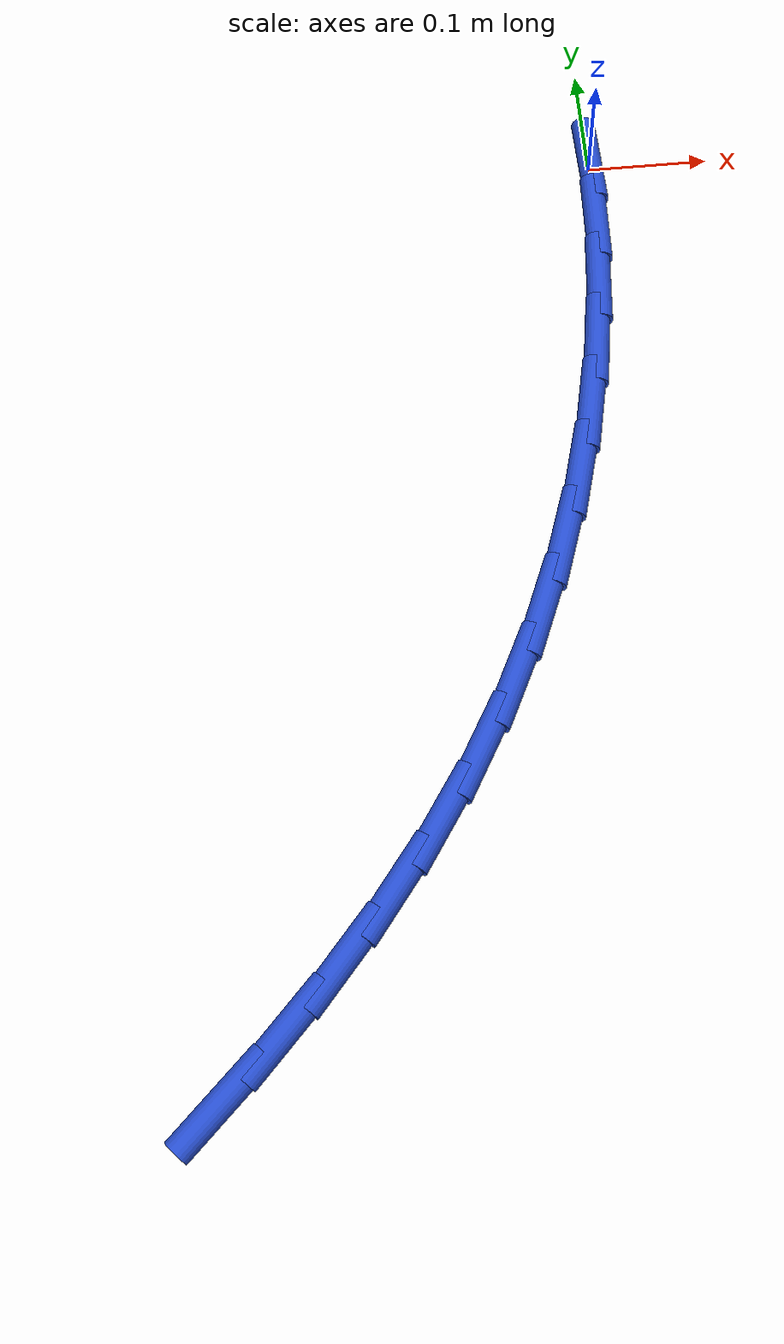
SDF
<sdf version="1.6">
 <world name="default">
  <model name="ground_plane">
   <static>1</static>
   <link name="link">
    <collision name="collision">
     <geometry><plane><normal>0 0 1</normal><size>100 100</size></plane></geometry>
     <surface><friction><ode><mu>100</mu><mu2>50</mu2></ode></friction></surface>
    </collision>
    <visual name="visual">
     <cast_shadows>0</cast_shadows>
     <geometry><plane><normal>0 0 1</normal><size>100 100</size></plane></geometry>
     <material>
      <script><uri>file://media/materials/scripts/gazebo.material</uri><name>Gazebo/WhiteGlow</name></script>
     </material>
    </visual>
   </link>
  </model>
  <model name="line">
   <link name="link_0">
    <pose>2.0816681711721685e-17 -1.249000902703301e-16 0.01 0 1.57 -1.5454491159029629</pose>
    <collision name="collision">
     <geometry><cylinder><radius>0.01</radius><length>0.08</length></cylinder></geometry>
    </collision>
    <visual name="visual">
     <material>
      <script><name>Gazebo/Blue</name><uri>file://media/materials/scripts/gazebo.material</uri></script>
     </material>
     <geometry><cylinder><radius>0.01</radius><length>0.08</length></cylinder></geometry>
    </visual>
   </link>
   <link name="link_106">
    <pose>-0.323745778050198 -0.7247630999607365 0.01 0 1.57 0.7623373935308274</pose>
    <collision name="collision">
     <geometry><cylinder><radius>0.01</radius><length>0.08</length></cylinder></geometry>
    </collision>
    <visual name="visual">
     <material>
      <script><name>Gazebo/Blue</name><uri>file://media/materials/scripts/gazebo.material</uri></script>
     </material>
     <geometry><cylinder><radius>0.01</radius><length>0.08</length></cylinder></geometry>
    </visual>
   </link>
   <link name="link_107">
    <pose>-0.2814242847969366 -0.6843498713710163 0.01 0 1.57 0.808982265817484</pose>
    <collision name="collision">
     <geometry><cylinder><radius>0.01</radius><length>0.08</length></cylinder></geometry>
    </collision>
    <visual name="visual">
     <material>
      <script><name>Gazebo/Blue</name><uri>file://media/materials/scripts/gazebo.material</uri></script>
     </material>
     <geometry><cylinder><radius>0.01</radius><length>0.08</length></cylinder></geometry>
    </visual>
   </link>
   <link name="link_108">
    <pose>-0.241251513107164 -0.6422360851887691 0.01 0 1.57 0.861483833911629</pose>
    <collision name="collision">
     <geometry><cylinder><radius>0.01</radius><length>0.08</length></cylinder></geometry>
    </collision>
    <visual name="visual">
     <material>
      <script><name>Gazebo/Blue</name><uri>file://media/materials/scripts/gazebo.material</uri></script>
     </material>
     <geometry><cylinder><radius>0.01</radius><length>0.08</length></cylinder></geometry>
    </visual>
   </link>
   <link name="link_109">
    <pose>-0.20352820281301356 -0.5982866285745537 0.01 0 1.57 0.9199089542316732</pose>
    <collision name="collision">
     <geometry><cylinder><radius>0.01</radius><length>0.08</length></cylinder></geometry>
    </collision>
    <visual name="visual">
     <material>
      <script><name>Gazebo/Blue</name><uri>file://media/materials/scripts/gazebo.material</uri></script>
     </material>
     <geometry><cylinder><radius>0.01</radius><length>0.08</length></cylinder></geometry>
    </visual>
   </link>
   <link name="link_110">
    <pose>-0.16855509374661737 -0.5523663886889276 0.01 0 1.57 0.9841681173515701</pose>
    <collision name="collision">
     <geometry><cylinder><radius>0.01</radius><length>0.08</length></cylinder></geometry>
    </collision>
    <visual name="visual">
     <material>
      <script><name>Gazebo/Blue</name><uri>file://media/materials/scripts/gazebo.material</uri></script>
     </material>
     <geometry><cylinder><radius>0.01</radius><length>0.08</length></cylinder></geometry>
    </visual>
   </link>
   <link name="link_111">
    <pose>-0.1366329257401081 -0.5043402526924491 0.01 0 1.57 1.0529610024362288</pose>
    <collision name="collision">
     <geometry><cylinder><radius>0.01</radius><length>0.08</length></cylinder></geometry>
    </collision>
    <visual name="visual">
     <material>
      <script><name>Gazebo/Blue</name><uri>file://media/materials/scripts/gazebo.material</uri></script>
     </material>
     <geometry><cylinder><radius>0.01</radius><length>0.08</length></cylinder></geometry>
    </visual>
   </link>
   <link name="link_112">
    <pose>-0.10802361318128563 -0.45412125836706085 0.01 0 1.57 1.1208173108550923</pose>
    <collision name="collision">
     <geometry><cylinder><radius>0.01</radius><length>0.08</length></cylinder></geometry>
    </collision>
    <visual name="visual">
     <material>
      <script><name>Gazebo/Blue</name><uri>file://media/materials/scripts/gazebo.material</uri></script>
     </material>
     <geometry><cylinder><radius>0.01</radius><length>0.08</length></cylinder></geometry>
    </visual>
   </link>
   <link name="link_113">
    <pose>-0.08278650128201051 -0.4018736661622895 0.01 0 1.57 1.1861594406078328</pose>
    <collision name="collision">
     <geometry><cylinder><radius>0.01</radius><length>0.08</length></cylinder></geometry>
    </collision>
    <visual name="visual">
     <material>
      <script><name>Gazebo/Blue</name><uri>file://media/materials/scripts/gazebo.material</uri></script>
     </material>
     <geometry><cylinder><radius>0.01</radius><length>0.08</length></cylinder></geometry>
    </visual>
   </link>
   <link name="link_114">
    <pose>-0.06091508563345128 -0.3478434020490416 0.01 0 1.57 1.2492087724873215</pose>
    <collision name="collision">
     <geometry><cylinder><radius>0.01</radius><length>0.08</length></cylinder></geometry>
    </collision>
    <visual name="visual">
     <material>
      <script><name>Gazebo/Blue</name><uri>file://media/materials/scripts/gazebo.material</uri></script>
     </material>
     <geometry><cylinder><radius>0.01</radius><length>0.08</length></cylinder></geometry>
    </visual>
   </link>
   <link name="link_115">
    <pose>-0.042402826717623195 -0.29227643553996735 0.01 0 1.57 1.3102335320832306</pose>
    <collision name="collision">
     <geometry><cylinder><radius>0.01</radius><length>0.08</length></cylinder></geometry>
    </collision>
    <visual name="visual">
     <material>
      <script><name>Gazebo/Blue</name><uri>file://media/materials/scripts/gazebo.material</uri></script>
     </material>
     <geometry><cylinder><radius>0.01</radius><length>0.08</length></cylinder></geometry>
    </visual>
   </link>
   <link name="link_116">
    <pose>-0.027243185016542375 -0.2354187361477192 0.01 0 1.57 1.3695333545036545</pose>
    <collision name="collision">
     <geometry><cylinder><radius>0.01</radius><length>0.08</length></cylinder></geometry>
    </collision>
    <visual name="visual">
     <material>
      <script><name>Gazebo/Blue</name><uri>file://media/materials/scripts/gazebo.material</uri></script>
     </material>
     <geometry><cylinder><radius>0.01</radius><length>0.08</length></cylinder></geometry>
    </visual>
   </link>
   <link name="link_117">
    <pose>-0.015429621012224084 -0.17751627338494752 0.01 0 1.57 1.427428244574597</pose>
    <collision name="collision">
     <geometry><cylinder><radius>0.01</radius><length>0.08</length></cylinder></geometry>
    </collision>
    <visual name="visual">
     <material>
      <script><name>Gazebo/Blue</name><uri>file://media/materials/scripts/gazebo.material</uri></script>
     </material>
     <geometry><cylinder><radius>0.01</radius><length>0.08</length></cylinder></geometry>
    </visual>
   </link>
   <link name="link_118">
    <pose>-0.006955595186683867 -0.11881501676430316 0.01 0 1.57 1.484250641346195</pose>
    <collision name="collision">
     <geometry><cylinder><radius>0.01</radius><length>0.08</length></cylinder></geometry>
    </collision>
    <visual name="visual">
     <material>
      <script><name>Gazebo/Blue</name><uri>file://media/materials/scripts/gazebo.material</uri></script>
     </material>
     <geometry><cylinder><radius>0.01</radius><length>0.08</length></cylinder></geometry>
    </visual>
   </link>
   <link name="link_119">
    <pose>-0.001814568021937274 -0.05956093579843648 0.01 0 1.57 1.5403400066231754</pose>
    <collision name="collision">
     <geometry><cylinder><radius>0.01</radius><length>0.08</length></cylinder></geometry>
    </collision>
    <visual name="visual">
     <material>
      <script><name>Gazebo/Blue</name><uri>file://media/materials/scripts/gazebo.material</uri></script>
     </material>
     <geometry><cylinder><radius>0.01</radius><length>0.08</length></cylinder></geometry>
    </visual>
   </link>
  </model>
 </world>
</sdf>
